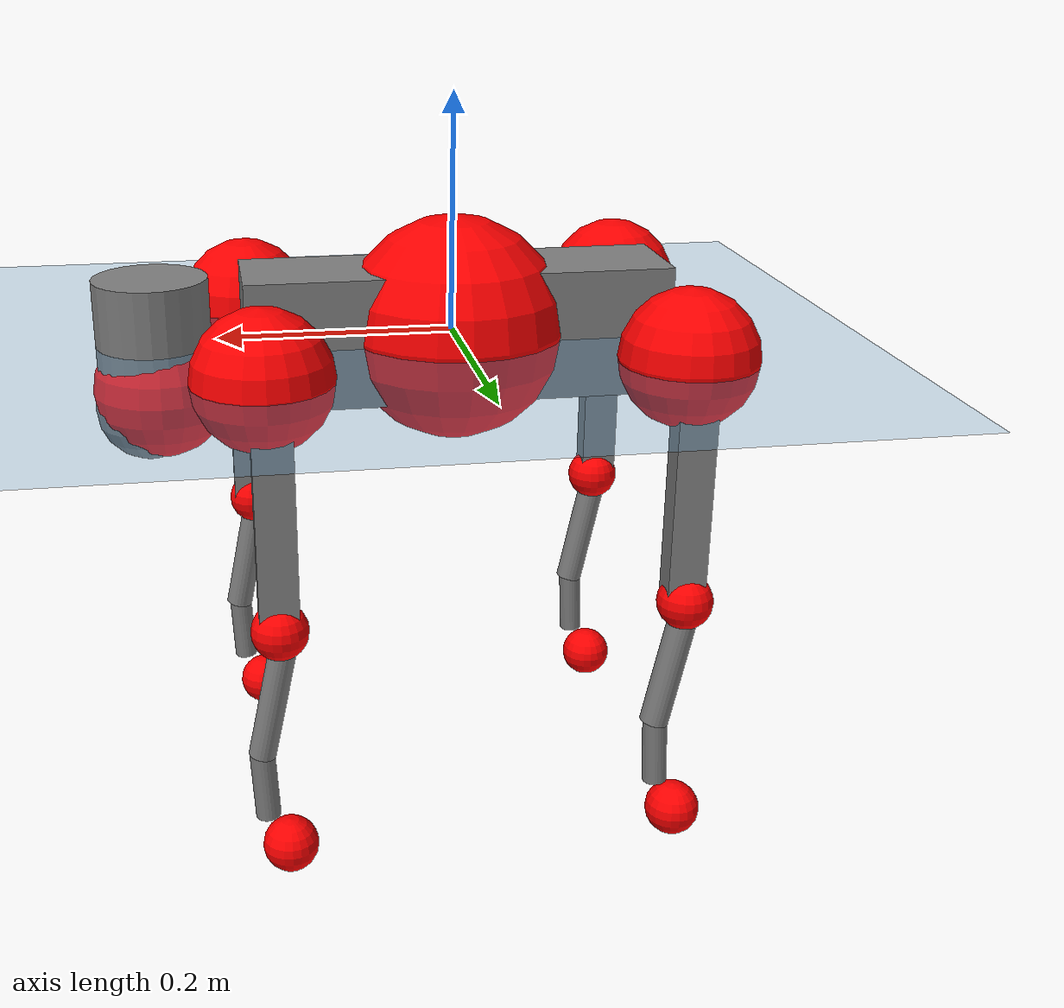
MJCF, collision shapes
<mujoco model="go2">
  <compiler angle="radian" assetdir="assets" balanceinertia="true" inertiafromgeom="false"/>

  <option timestep="0.005" density="1.2" viscosity="2e-05"/>

  <size nkey="1"/>

  <visual>
    <quality shadowsize="8192"/>
    <map shadowclip="0.5"/>
  </visual>

  <default>
    <default class="/">
      <geom contype="0" conaffinity="0" group="1" solref="-1000 -80"/>
      <site size="0.01 0.005 0.005" group="5"/>
      <general forcelimited="true" biastype="affine" gainprm="20" biasprm="0 -20 -0.5"/>
      <default class="go2">
        <joint armature="0.01" damping="0.01" frictionloss="0.2"/>
        <geom condim="1" margin="0.001"/>
        <default class="visual">
          <geom type="mesh" group="2"/>
        </default>
        <default class="collision">
          <geom group="3"/>
          <default class="foot">
            <geom size="0.022 0 0" condim="6" priority="1" friction="0.8 0.02 0.01" solimp="0.015 1 0.022"/>
          </default>
        </default>
        <default class="reward_collision_sphere">
          <geom group="5" rgba="1 0 0 1"/>
        </default>
      </default>
    </default>
  </default>

  <asset>
    <texture type="skybox" colorspace="auto" name="//unnamed_texture_0" builtin="gradient" rgb1="0.95 0.95 0.95" rgb2="0.95 0.95 0.95" width="100" height="600"/>
    <texture type="2d" colorspace="auto" name="texplane" builtin="checker" rgb1="0.345 0.575 0.748" rgb2="0.345 0.575 0.748" markrgb="1 1 1" width="512" height="512"/>
    <material name="MatPlane" class="/" texture="texplane" texuniform="true" texrepeat="2 2" specular="0.9"/>
    <material name="metal" class="/" rgba="0.9 0.95 0.95 1"/>
    <material name="black" class="/" rgba="0 0 0 1"/>
    <material name="white" class="/"/>
    <material name="gray" class="/" rgba="0.671705 0.692426 0.77427 1"/>
    <mesh name="base_0" class="/" file="base_0.obj"/>
    <mesh name="base_1" class="/" file="base_1.obj"/>
    <mesh name="base_2" class="/" file="base_2.obj"/>
    <mesh name="base_3" class="/" file="base_3.obj"/>
    <mesh name="base_4" class="/" file="base_4.obj"/>
    <mesh name="hip_0" class="/" file="hip_0.obj"/>
    <mesh name="hip_1" class="/" file="hip_1.obj"/>
    <mesh name="thigh_0" class="/" file="thigh_0.obj"/>
    <mesh name="thigh_1" class="/" file="thigh_1.obj"/>
    <mesh name="thigh_mirror_0" class="/" file="thigh_mirror_0.obj"/>
    <mesh name="thigh_mirror_1" class="/" file="thigh_mirror_1.obj"/>
    <mesh name="calf_0" class="/" file="calf_0.obj"/>
    <mesh name="calf_1" class="/" file="calf_1.obj"/>
    <mesh name="calf_mirror_0" class="/" file="calf_mirror_0.obj"/>
    <mesh name="calf_mirror_1" class="/" file="calf_mirror_1.obj"/>
    <mesh name="foot" class="/" file="foot.obj"/>
  </asset>

  <worldbody>
    <geom name="floor" class="/" size="100 100 0.125" type="plane" group="0" material="MatPlane"/>
    <light name="toplight_shadow" class="/" pos="0 0 5" dir="0.0990148 0.0990148 -0.990148" type="directional" ambient="0.04 0.04 0.04" diffuse="0.55 0.55 0.55" specular="0.12 0.12 0.12"/>
    <light name="toplight_fill" class="/" pos="0 0 5" dir="0.0990148 0.0990148 -0.990148" type="directional" castshadow="false" ambient="0.04 0.04 0.04" diffuse="0.3 0.3 0.3" specular="0.08 0.08 0.08"/>
    <body name="trunk" childclass="go2" pos="-0.00156966 0.000455543 0.00232991" quat="0.999999 0.000376908 0.000755181 0.00107175">
      <inertial pos="0.0193647 -0.00157862 -0.007938" quat="0.0034517 0.711954 -0.00527348 0.702198" mass="6.02636" diaginertia="0.0603961 0.104479 0.0204261"/>
      <joint name="//unnamed_joint_0" type="free" armature="0" damping="0" frictionloss="0"/>
      <geom name="//unnamed_geom_1" class="visual" material="black" mesh="base_0"/>
      <geom name="//unnamed_geom_2" class="visual" material="black" mesh="base_1"/>
      <geom name="//unnamed_geom_3" class="visual" material="black" mesh="base_2"/>
      <geom name="//unnamed_geom_4" class="visual" material="white" mesh="base_3"/>
      <geom name="//unnamed_geom_5" class="visual" material="gray" mesh="base_4"/>
      <geom name="trunk_1" class="collision" size="0.18007 0.0447542 0.0545666" type="box"/>
      <geom name="trunk_2" class="collision" size="0.0478654 0.0430789" pos="0.254482 0 0.0096518" type="cylinder"/>
      <geom name="trunk_3" class="collision" size="0.0449935" pos="0.261625 0 -0.0579108"/>
      <geom name="//unnamed_geom_9" class="reward_collision_sphere" size="0.0957309"/>
      <geom name="//unnamed_geom_10" class="reward_collision_sphere" size="0.0574385" pos="0.250017 0 -0.0434331"/>
      <site name="imu" pos="-0.0193767 0.000819837 0.0372135" size="0.00957309"/>
      <camera name="track" pos="0 -2.02766 0" quat="0.707107 0.707107 0 0" mode="trackcom"/>
      <camera name="ego_camera" pos="0.27859 0 0.0434331" quat="-0.5 -0.5 0.5 0.5"/>
      <body name="FL_hip" pos="0.170107 0.0452394 -0.00220574" quat="1 1.16411e-05 2.32205e-05 1.51834e-05">
        <inertial pos="-0.00489441 -0.000113889 0.000790549" quat="0.496832 0.49949 0.505264 0.498373" mass="0.620721" diaginertia="0.000503789 0.000628636 0.000406635"/>
        <joint name="FL_hip_joint" pos="0 0 0" axis="0.999851 0.0170451 0.00283682" range="-1.04796 1.10074" armature="0.00909708" damping="0.0214947" frictionloss="0.166863"/>
        <geom name="//unnamed_geom_11" class="visual" material="metal" mesh="hip_0"/>
        <geom name="//unnamed_geom_12" class="visual" material="gray" mesh="hip_1"/>
        <geom name="//unnamed_geom_13" class="collision" size="0.0440362 0.0191462" pos="0 0.0811062 0" quat="0.707107 0.707107 0 0" type="cylinder"/>
        <geom name="//unnamed_geom_14" class="reward_collision_sphere" size="0.0574385" pos="0 0.070968 0"/>
        <body name="FL_thigh" pos="-0.00335934 0.0967495 0.00267866" quat="1 0.000381899 0.000199039 0.000171298">
          <inertial pos="-0.00459027 -0.0221603 -0.0287423" quat="0.832609 0.0896466 -0.0132374 0.546397" mass="0.989135" diaginertia="0.00341263 0.00632976 0.000761693"/>
          <joint name="FL_thigh_joint" pos="0 0 0" axis="0.00667774 0.999952 -0.00711834" stiffness="0.00547291" range="-1.54428 3.54262" armature="0.00879953" damping="0.0158498" frictionloss="0.164741"/>
          <geom name="//unnamed_geom_15" class="visual" material="metal" mesh="thigh_0"/>
          <geom name="//unnamed_geom_16" class="visual" material="gray" mesh="thigh_1"/>
          <geom name="//unnamed_geom_17" class="collision" size="0.101953 0.011727 0.0162742" pos="0 0 -0.102792" quat="0.707107 0 0.707107 0" type="box"/>
          <body name="FL_calf" pos="-0.000411835 0.000850008 -0.20674" quat="1 -0.000335698 0.000199861 0.000305117">
            <inertial pos="0.00569474 0.000525635 -0.138958" quat="0.709018 0.00169544 -0.00578077 0.705164" mass="0.211111" diaginertia="0.000822538 0.0015449 4.47611e-05"/>
            <joint name="FL_calf_joint" pos="0 0 0" axis="-0.00776898 0.999937 -0.00815416" range="-2.67034 -0.844421" armature="0.0105658" damping="0" frictionloss="0.18848"/>
            <geom name="//unnamed_geom_18" class="visual" material="gray" mesh="calf_0"/>
            <geom name="//unnamed_geom_19" class="visual" material="black" mesh="calf_1"/>
            <geom name="FL_calf0" class="collision" size="0.0114877 0.0574385" pos="0.00714335 0 -0.0579108" quat="0.994493 0 -0.104807 0" type="cylinder"/>
            <geom name="//unnamed_geom_21" class="collision" size="0.0105304 0.0311125" pos="0.0178584 0 -0.142847" quat="0.999688 0 0.0249974 0" type="cylinder"/>
            <geom name="//unnamed_geom_22" class="visual" pos="0 0 -0.205583" quat="1 0 0 0" material="black" mesh="foot"/>
            <geom name="FL_foot" class="foot" size="0.0162782" pos="-0.00178584 0 -0.205583"/>
            <geom name="//unnamed_geom_24" class="reward_collision_sphere" size="0.0239327"/>
            <geom name="//unnamed_geom_25" class="reward_collision_sphere" size="0.0239327" pos="-0.00178584 0 -0.205583"/>
            <site name="FL_foot" class="foot" pos="-0.00178584 0 -0.205583" size="0.00957309"/>
          </body>
        </body>
      </body>
      <body name="FR_hip" pos="0.172299 -0.0444913 -0.00175907" quat="1 -0.000160974 0.000322092 9.15606e-05">
        <inertial pos="-0.00738323 -0.000986902 -0.00299524" quat="0.498206 0.505453 0.49902 0.497279" mass="0.604071" diaginertia="0.000491724 0.000647624 0.000392688"/>
        <joint name="FR_hip_joint" pos="0 0 0" axis="0.999964 0.00839493 0.00149695" stiffness="0.0101083" range="-1.04019 1.04223" armature="0.0096334" damping="0.00114792" frictionloss="0.215023"/>
        <geom name="//unnamed_geom_26" class="visual" pos="0 4.23804e-10 1.81778e-08" quat="4.63268e-05 1 0 0" material="metal" mesh="hip_0"/>
        <geom name="//unnamed_geom_27" class="visual" pos="0 6.87037e-10 -4.49607e-08" quat="4.63268e-05 1 0 0" material="gray" mesh="hip_1"/>
        <geom name="//unnamed_geom_28" class="collision" size="0.0440362 0.0191462" pos="0 -0.0811062 0" quat="0.707107 0.707107 0 0" type="cylinder"/>
        <geom name="//unnamed_geom_29" class="reward_collision_sphere" size="0.0574385" pos="0 -0.070968 0"/>
        <body name="FR_thigh" pos="0.0029515 -0.0993955 -0.000662684" quat="1 -1.46545e-05 -0.00031365 -0.000609334">
          <inertial pos="-0.00295897 0.0207043 -0.0342851" quat="0.545181 -0.0208517 0.0966271 0.83247" mass="1.02715" diaginertia="0.00323521 0.00607004 0.000735541"/>
          <joint name="FR_thigh_joint" pos="0 0 0" axis="-0.00695968 -0.999975 0.00125339" range="-3.44516 1.54903" armature="0.00842773" damping="0.0196025" frictionloss="0.217094"/>
          <geom name="//unnamed_geom_30" class="visual" material="metal" mesh="thigh_mirror_0"/>
          <geom name="//unnamed_geom_31" class="visual" material="gray" mesh="thigh_mirror_1"/>
          <geom name="//unnamed_geom_32" class="collision" size="0.101953 0.011727 0.0162742" pos="0 0 -0.102792" quat="0.707107 0 0.707107 0" type="box"/>
          <body name="FR_calf" pos="-0.00297522 -0.00119872 -0.206073" quat="0.999999 0.000266764 -0.000592958 0.00123469">
            <inertial pos="0.00342461 0.000740507 -0.136695" quat="0.703381 -0.00427934 0.00151477 0.710798" mass="0.224662" diaginertia="0.000895828 0.00155226 4.58767e-05"/>
            <joint name="FR_calf_joint" pos="0 0 0" axis="-0.00118772 -0.999982 -0.00591133" range="0.827342 2.66461" armature="0.0106012" damping="0.0103177" frictionloss="0.217777"/>
            <geom name="//unnamed_geom_33" class="visual" material="gray" mesh="calf_mirror_0"/>
            <geom name="//unnamed_geom_34" class="visual" material="black" mesh="calf_mirror_1"/>
            <geom name="FR_calf0" class="collision" size="0.012445 0.0574385" pos="0.00892918 0 -0.0579108" quat="0.995004 0 -0.0998334 0" type="cylinder"/>
            <geom name="//unnamed_geom_36" class="collision" size="0.0105304 0.0311125" pos="0.0178584 0 -0.142847" quat="0.999688 0 0.0249974 0" type="cylinder"/>
            <geom name="//unnamed_geom_37" class="visual" pos="0 0 -0.205583" quat="1 0 0 0" material="black" mesh="foot"/>
            <geom name="FR_foot" class="foot" size="0.0206047" pos="-0.00178584 0 -0.205583"/>
            <geom name="//unnamed_geom_39" class="reward_collision_sphere" size="0.0239327"/>
            <geom name="//unnamed_geom_40" class="reward_collision_sphere" size="0.0239327" pos="-0.00178584 0 -0.205583"/>
            <site name="FR_foot" class="foot" pos="-0.00178584 0 -0.205583" size="0.00957309"/>
          </body>
        </body>
      </body>
      <body name="RL_hip" pos="-0.171367 0.0447694 -0.0010415" quat="1 0.000498571 0.000268216 0.000382221">
        <inertial pos="0.00475842 0.00481303 0.00108582" quat="0.501483 0.494068 0.497264 0.507089" mass="0.59905" diaginertia="0.000499132 0.000632891 0.000390028"/>
        <joint name="RL_hip_joint" pos="0 0 0" axis="-1 -0.000420403 -0.000808511" range="-1.04383 1.08893" armature="0.00993305" damping="0.00730351" frictionloss="0.193204"/>
        <geom name="//unnamed_geom_41" class="visual" pos="6.29512e-10 0 1.23399e-07" quat="4.63268e-05 0 1 0" material="metal" mesh="hip_0"/>
        <geom name="//unnamed_geom_42" class="visual" pos="1.02051e-09 0 1.09437e-07" quat="4.63268e-05 0 1 0" material="gray" mesh="hip_1"/>
        <geom name="//unnamed_geom_43" class="collision" size="0.0440362 0.0191462" pos="0 0.0811062 0" quat="0.707107 0.707107 0 0" type="cylinder"/>
        <geom name="//unnamed_geom_44" class="reward_collision_sphere" size="0.0574385" pos="0 0.070968 0"/>
        <body name="RL_thigh" pos="-2.45269e-05 0.0938312 0.00175263" quat="0.999999 0.00109686 6.37395e-05 -0.000588748">
          <inertial pos="-0.00265272 -0.0199387 -0.0318438" quat="0.829622 0.0843281 -0.0201522 0.551552" mass="0.947733" diaginertia="0.00328408 0.0062516 0.000735456"/>
          <joint name="RL_thigh_joint" pos="0 0 0" axis="-0.00129896 0.999986 0.00519058" stiffness="0.00206019" range="-0.577634 4.48681" armature="0.00996032" damping="0" frictionloss="0.190566"/>
          <geom name="//unnamed_geom_45" class="visual" material="metal" mesh="thigh_0"/>
          <geom name="//unnamed_geom_46" class="visual" material="gray" mesh="thigh_1"/>
          <geom name="//unnamed_geom_47" class="collision" size="0.101953 0.011727 0.0162742" pos="0 0 -0.102792" quat="0.707107 0 0.707107 0" type="box"/>
          <body name="RL_calf" pos="-0.00234592 0.00147002 -0.208319" quat="1 8.29602e-05 -0.000167267 0.000279988">
            <inertial pos="0.00830878 0.000591565 -0.138771" quat="0.705844 0.0124509 -0.00865151 0.708205" mass="0.209831" diaginertia="0.00081108 0.00158024 4.52109e-05"/>
            <joint name="RL_calf_joint" pos="0 0 0" axis="-0.00215156 0.999997 -0.00125605" stiffness="0.0120651" range="-2.69373 -0.884605" armature="0.00989026" damping="0.0108076" frictionloss="0.174924"/>
            <geom name="//unnamed_geom_48" class="visual" material="gray" mesh="calf_0"/>
            <geom name="//unnamed_geom_49" class="visual" material="black" mesh="calf_1"/>
            <geom name="RL_calf0" class="collision" size="0.012445 0.0574385" pos="0.00892918 0 -0.0579108" quat="0.995004 0 -0.0998334 0" type="cylinder"/>
            <geom name="//unnamed_geom_51" class="collision" size="0.0105304 0.0311125" pos="0.0178584 0 -0.142847" quat="0.999688 0 0.0249974 0" type="cylinder"/>
            <geom name="//unnamed_geom_52" class="visual" pos="0 0 -0.205583" quat="1 0 0 0" material="black" mesh="foot"/>
            <geom name="RL_foot" class="foot" size="0.0195081" pos="-0.00178584 0 -0.205583"/>
            <geom name="//unnamed_geom_54" class="reward_collision_sphere" size="0.0239327"/>
            <geom name="//unnamed_geom_55" class="reward_collision_sphere" size="0.0239327" pos="-0.00178584 0 -0.205583"/>
            <site name="RL_foot" class="foot" pos="-0.00178584 0 -0.205583" size="0.00957309"/>
          </body>
        </body>
      </body>
      <body name="RR_hip" pos="-0.173302 -0.0477351 0.00347658" quat="1 9.47625e-05 3.65068e-05 0.000130286">
        <inertial pos="0.00207689 0.000942165 -0.000530311" quat="0.502149 0.496903 0.498845 0.502082" mass="0.610714" diaginertia="0.000506575 0.000639005 0.000403447"/>
        <joint name="RR_hip_joint" pos="0 0 0" axis="-0.999991 0.000848323 0.00405286" range="-1.07012 1.10403" armature="0.00830484" damping="0" frictionloss="0.188882"/>
        <geom name="//unnamed_geom_56" class="visual" pos="-6.25326e-10 4.23804e-10 1.05221e-07" quat="2.14617e-09 4.63268e-05 4.63268e-05 -1" material="metal" mesh="hip_0"/>
        <geom name="//unnamed_geom_57" class="visual" pos="-1.03087e-09 6.87037e-10 1.54398e-07" quat="2.14617e-09 4.63268e-05 4.63268e-05 -1" material="gray" mesh="hip_1"/>
        <geom name="//unnamed_geom_58" class="collision" size="0.0440362 0.0191462" pos="0 -0.0811062 0" quat="0.707107 0.707107 0 0" type="cylinder"/>
        <geom name="//unnamed_geom_59" class="reward_collision_sphere" size="0.0574385" pos="0 -0.070968 0"/>
        <body name="RR_thigh" pos="0.000152731 -0.0948306 -0.000190515" quat="1 5.26802e-05 -0.000259829 0.000545814">
          <inertial pos="-0.00369674 0.0254483 -0.0301673" quat="0.552846 -0.0211751 0.0855887 0.828606" mass="0.949596" diaginertia="0.00317475 0.0061072 0.000712907"/>
          <joint name="RR_thigh_joint" pos="0 0 0" axis="-0.0033544 -0.999966 -0.00749395" range="-4.48216 0.483879" armature="0.00931888" damping="0.0240918" frictionloss="0.187646"/>
          <geom name="//unnamed_geom_60" class="visual" material="metal" mesh="thigh_mirror_0"/>
          <geom name="//unnamed_geom_61" class="visual" material="gray" mesh="thigh_mirror_1"/>
          <geom name="//unnamed_geom_62" class="collision" size="0.101953 0.011727 0.0162742" pos="0 0 -0.102792" quat="0.707107 0 0.707107 0" type="box"/>
          <body name="RR_calf" pos="0.00276528 0.000786254 -0.207412" quat="1 9.40453e-05 0.000209204 -0.000162952">
            <inertial pos="0.0073489 -0.00199123 -0.135016" quat="0.708375 -0.00836496 0.00862125 0.705734" mass="0.210233" diaginertia="0.00082339 0.00156587 4.31845e-05"/>
            <joint name="RR_calf_joint" pos="0 0 0" axis="-0.0158198 -0.999874 0.00129351" stiffness="0.000321399" range="0.8496 2.7438" armature="0.00938103" damping="0.0108693" frictionloss="0.217346"/>
            <geom name="//unnamed_geom_63" class="visual" material="gray" mesh="calf_mirror_0"/>
            <geom name="//unnamed_geom_64" class="visual" material="black" mesh="calf_mirror_1"/>
            <geom name="RR_calf0" class="collision" size="0.012445 0.0574385" pos="0.00892918 0 -0.0579108" quat="0.995004 0 -0.0998334 0" type="cylinder"/>
            <geom name="//unnamed_geom_66" class="collision" size="0.0105304 0.0311125" pos="0.0178584 0 -0.142847" quat="0.999688 0 0.0249974 0" type="cylinder"/>
            <geom name="//unnamed_geom_67" class="visual" pos="0 0 -0.205583" quat="1 0 0 0" material="black" mesh="foot"/>
            <geom name="RR_foot" class="foot" size="0.0194668" pos="-0.00178584 0 -0.205583"/>
            <geom name="//unnamed_geom_69" class="reward_collision_sphere" size="0.0239327"/>
            <geom name="//unnamed_geom_70" class="reward_collision_sphere" size="0.0239327" pos="-0.00178584 0 -0.205583"/>
            <site name="RR_foot" class="foot" pos="-0.00178584 0 -0.205583" size="0.00957309"/>
          </body>
        </body>
      </body>
    </body>
  </worldbody>

  <contact>
    <pair class="/" geom1="floor" geom2="FL_foot" name="//unnamed_contact_0"/>
    <pair class="/" geom1="floor" geom2="FR_foot" name="//unnamed_contact_1"/>
    <pair class="/" geom1="floor" geom2="RL_foot" name="//unnamed_contact_2"/>
    <pair class="/" geom1="floor" geom2="RR_foot" name="//unnamed_contact_3"/>
  </contact>

  <actuator>
    <general name="FL_hip" class="/" joint="FL_hip_joint" forcerange="-20.9023 20.9023" gainprm="17.8985" biasprm="0 -17.8985 -0.445681"/>
    <general name="FL_thigh" class="/" joint="FL_thigh_joint" forcerange="-22.4042 22.4042" gainprm="17.8985" biasprm="0 -17.8985 -0.445681"/>
    <general name="FL_calf" class="/" joint="FL_calf_joint" forcerange="-39.5546 39.5546" gainprm="17.8985" biasprm="0 -17.8985 -0.445681"/>
    <general name="FR_hip" class="/" joint="FR_hip_joint" forcerange="-21.9944 21.9944" gainprm="17.8985" biasprm="0 -17.8985 -0.445681"/>
    <general name="FR_thigh" class="/" joint="FR_thigh_joint" forcerange="-24.734 24.734" gainprm="17.8985" biasprm="0 -17.8985 -0.445681"/>
    <general name="FR_calf" class="/" joint="FR_calf_joint" forcerange="-41.9902 41.9902" gainprm="17.8985" biasprm="0 -17.8985 -0.445681"/>
    <general name="RL_hip" class="/" joint="RL_hip_joint" forcerange="-22.4375 22.4375" gainprm="17.8985" biasprm="0 -17.8985 -0.445681"/>
    <general name="RL_thigh" class="/" joint="RL_thigh_joint" forcerange="-20.7521 20.7521" gainprm="17.8985" biasprm="0 -17.8985 -0.445681"/>
    <general name="RL_calf" class="/" joint="RL_calf_joint" forcerange="-47.4142 47.4142" gainprm="17.8985" biasprm="0 -17.8985 -0.445681"/>
    <general name="RR_hip" class="/" joint="RR_hip_joint" forcerange="-22.7424 22.7424" gainprm="17.8985" biasprm="0 -17.8985 -0.445681"/>
    <general name="RR_thigh" class="/" joint="RR_thigh_joint" forcerange="-23.9155 23.9155" gainprm="17.8985" biasprm="0 -17.8985 -0.445681"/>
    <general name="RR_calf" class="/" joint="RR_calf_joint" forcerange="-46.0919 46.0919" gainprm="17.8985" biasprm="0 -17.8985 -0.445681"/>
  </actuator>

  <sensor>
    <gyro site="imu" name="imu_angular_velocity"/>
    <velocimeter site="imu" name="imu_linear_velocity"/>
    <framelinvel objtype="site" objname="FL_foot" name="FL_foot_global_linear_velocity"/>
    <framelinvel objtype="site" objname="FR_foot" name="FR_foot_global_linear_velocity"/>
    <framelinvel objtype="site" objname="RL_foot" name="RL_foot_global_linear_velocity"/>
    <framelinvel objtype="site" objname="RR_foot" name="RR_foot_global_linear_velocity"/>
  </sensor>

  <keyframe>
    <key name="home" qpos="0 0 0.325 1 0 0 0 0.1 0.8 -1.5 -0.1 -0.8 1.5 -0.1 0.8 -1.5 0.1 -0.8 1.5"/>
  </keyframe>
</mujoco>
